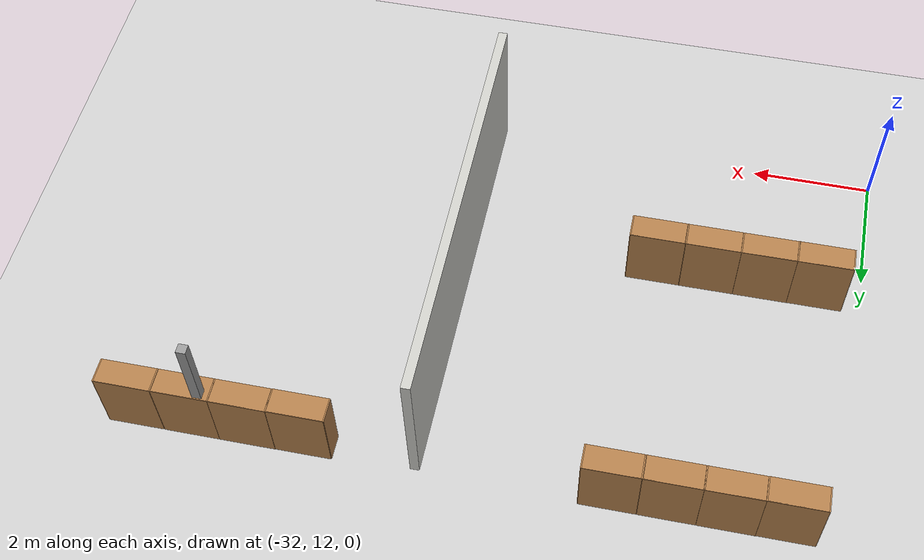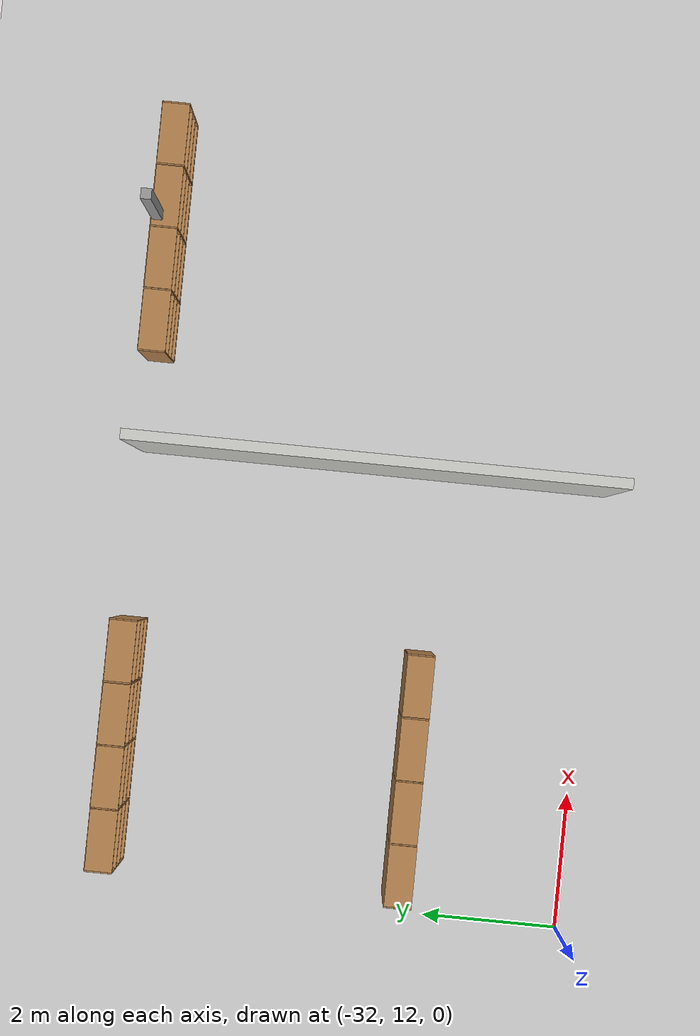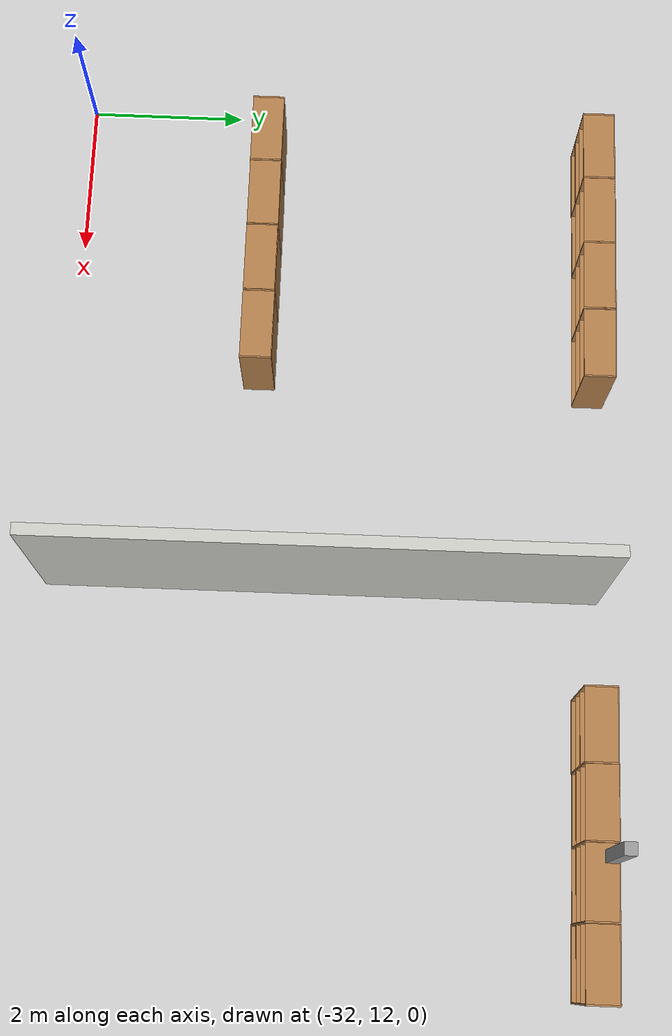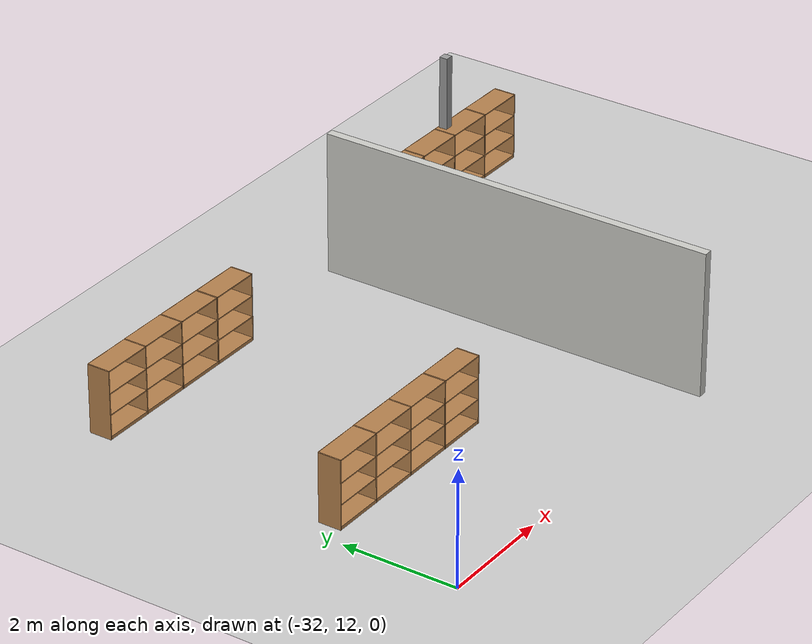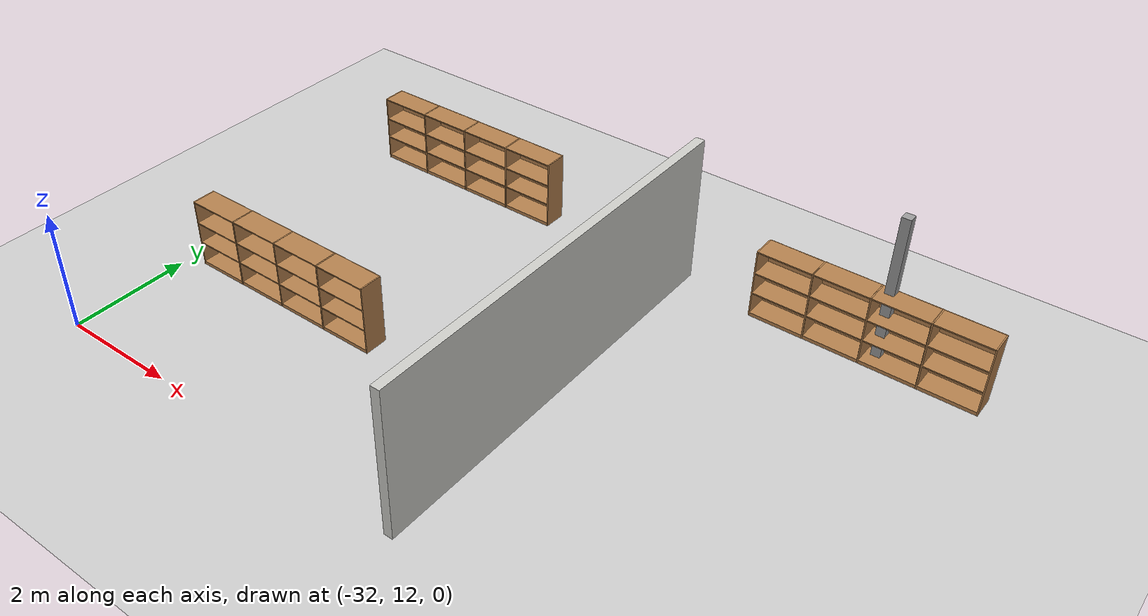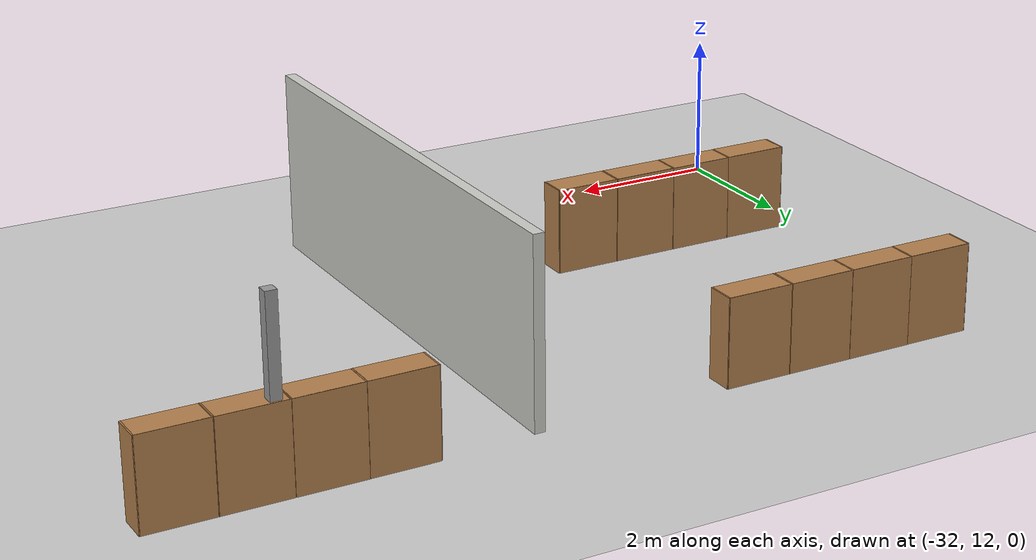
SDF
<sdf version="1.6">
 <world name="default">
  <model name="ground_plane">
   <static>1</static>
   <link name="link">
    <collision name="collision">
     <geometry><plane><normal>0 0 1</normal><size>100 100</size></plane></geometry>
     <surface><friction><ode><mu>100</mu><mu2>50</mu2></ode></friction></surface>
    </collision>
    <visual name="visual">
     <cast_shadows>0</cast_shadows>
     <geometry><plane><normal>0 0 1</normal><size>100 100</size></plane></geometry>
     <material>
      <script><uri>file://media/materials/scripts/gazebo.material</uri><name>Gazebo/Grey</name></script>
     </material>
    </visual>
   </link>
  </model>
  <model name="floor">
   <link name="Wall_33">
    <pose>-26.6849 16.6365 0 0 -0 1.5708</pose>
    <visual name="Wall_33_Visual">
     <pose>0 0 1.25 0 -0 0</pose>
     <geometry><box><size>7 0.15 2.5</size></box></geometry>
     <material>
      <script><uri>file://media/materials/scripts/gazebo.material</uri><name>Gazebo/CeilingTiled</name></script>
      <ambient>0.760784 0.662745 0.627451 1</ambient>
     </material>
     <meta><layer>0</layer></meta>
    </visual>
    <collision name="Wall_33_Collision">
     <pose>0 0 1.25 0 -0 0</pose>
     <geometry><box><size>7 0.15 2.5</size></box></geometry>
     <surface>
      <friction>
       <ode><mu>1</mu><mu2>1</mu2><fdir1>0 0 0</fdir1><slip1>0</slip1><slip2>0</slip2></ode>
       <torsional>
        <coefficient>1</coefficient>
        <patch_radius>0</patch_radius>
        <surface_radius>0</surface_radius>
        <use_patch_radius>1</use_patch_radius>
        <ode><slip>0</slip></ode>
       </torsional>
      </friction>
      <bounce><restitution_coefficient>0</restitution_coefficient><threshold>1e+06</threshold></bounce>
      <contact>
       <collide_without_contact>0</collide_without_contact>
       <collide_without_contact_bitmask>1</collide_without_contact_bitmask>
       <collide_bitmask>1</collide_bitmask>
       <ode>
        <soft_cfm>0</soft_cfm>
        <soft_erp>0.2</soft_erp>
        <kp>1e+13</kp>
        <kd>1</kd>
        <max_vel>0.01</max_vel>
        <min_depth>0</min_depth>
       </ode>
       <bullet>
        <split_impulse>1</split_impulse>
        <split_impulse_penetration_threshold>-0.01</split_impulse_penetration_threshold>
        <soft_cfm>0</soft_cfm>
        <soft_erp>0.2</soft_erp>
        <kp>1e+13</kp>
        <kd>1</kd>
       </bullet>
      </contact>
     </surface>
    </collision>
   </link>
   <link name="Wall_8">
    <pose>-23.3952 20.1172 0 0 -0 0</pose>
    <visual name="Wall_8_Visual">
     <pose>0 0 1.25 0 -0 0</pose>
     <geometry><box><size>0.15 0.15 2.5</size></box></geometry>
     <material>
      <script><uri>file://media/materials/scripts/gazebo.material</uri><name>Gazebo/Grey</name></script>
      <ambient>1 1 1 1</ambient>
     </material>
     <meta><layer>0</layer></meta>
    </visual>
    <collision name="Wall_8_Collision">
     <pose>0 0 1.25 0 -0 0</pose>
     <geometry><box><size>0.15 0.15 2.5</size></box></geometry>
     <surface>
      <friction>
       <ode><mu>1</mu><mu2>1</mu2><fdir1>0 0 0</fdir1><slip1>0</slip1><slip2>0</slip2></ode>
       <torsional>
        <coefficient>1</coefficient>
        <patch_radius>0</patch_radius>
        <surface_radius>0</surface_radius>
        <use_patch_radius>1</use_patch_radius>
        <ode><slip>0</slip></ode>
       </torsional>
      </friction>
      <bounce><restitution_coefficient>0</restitution_coefficient><threshold>1e+06</threshold></bounce>
      <contact>
       <collide_without_contact>0</collide_without_contact>
       <collide_without_contact_bitmask>1</collide_without_contact_bitmask>
       <collide_bitmask>1</collide_bitmask>
       <ode>
        <soft_cfm>0</soft_cfm>
        <soft_erp>0.2</soft_erp>
        <kp>1e+13</kp>
        <kd>1</kd>
        <max_vel>0.01</max_vel>
        <min_depth>0</min_depth>
       </ode>
       <bullet>
        <split_impulse>1</split_impulse>
        <split_impulse_penetration_threshold>-0.01</split_impulse_penetration_threshold>
        <soft_cfm>0</soft_cfm>
        <soft_erp>0.2</soft_erp>
        <kp>1e+13</kp>
        <kd>1</kd>
       </bullet>
      </contact>
     </surface>
    </collision>
   </link>
   <static>1</static>
   <pose>1.26361 -1.27025 0 0 -0 0</pose>
  </model>
  <model name="Bookshelf-4_clone_24">
   <model name="bookshelf">
    <static>1</static>
    <link name="link">
     <inertial><mass>1</mass></inertial>
     <collision name="back">
      <pose>0 0.005 0.6 0 -0 0</pose>
      <geometry><box><size>0.9 0.01 1.2</size></box></geometry>
     </collision>
     <visual name="visual1">
      <pose>0 0.005 0.6 0 -0 0</pose>
      <geometry><box><size>0.9 0.01 1.2</size></box></geometry>
      <material>
       <script><uri>file://media/materials/scripts/gazebo.material</uri><name>Gazebo/Wood</name></script>
      </material>
     </visual>
     <collision name="left_side">
      <pose>0.45 -0.195 0.6 0 -0 0</pose>
      <geometry><box><size>0.02 0.4 1.2</size></box></geometry>
     </collision>
     <visual name="visual2">
      <pose>0.45 -0.195 0.6 0 -0 0</pose>
      <geometry><box><size>0.02 0.4 1.2</size></box></geometry>
      <material>
       <script><uri>file://media/materials/scripts/gazebo.material</uri><name>Gazebo/Wood</name></script>
      </material>
     </visual>
     <collision name="right_side">
      <pose>-0.45 -0.195 0.6 0 -0 0</pose>
      <geometry><box><size>0.02 0.4 1.2</size></box></geometry>
     </collision>
     <visual name="visual3">
      <pose>-0.45 -0.195 0.6 0 -0 0</pose>
      <geometry><box><size>0.02 0.4 1.2</size></box></geometry>
      <material>
       <script><uri>file://media/materials/scripts/gazebo.material</uri><name>Gazebo/Wood</name></script>
      </material>
     </visual>
     <collision name="bottom">
      <pose>0 -0.195 0.03 0 -0 0</pose>
      <geometry><box><size>0.88 0.4 0.06</size></box></geometry>
     </collision>
     <visual name="visual4">
      <pose>0 -0.195 0.03 0 -0 0</pose>
      <geometry><box><size>0.88 0.4 0.06</size></box></geometry>
      <material>
       <script><uri>file://media/materials/scripts/gazebo.material</uri><name>Gazebo/Wood</name></script>
      </material>
     </visual>
     <collision name="top">
      <pose>0 -0.195 1.19 0 -0 0</pose>
      <geometry><box><size>0.88 0.4 0.02</size></box></geometry>
     </collision>
     <visual name="visual5">
      <pose>0 -0.195 1.19 0 -0 0</pose>
      <geometry><box><size>0.88 0.4 0.02</size></box></geometry>
      <material>
       <script><uri>file://media/materials/scripts/gazebo.material</uri><name>Gazebo/Wood</name></script>
      </material>
     </visual>
     <collision name="low_shelf">
      <pose>0 -0.195 0.43 0 -0 0</pose>
      <geometry><box><size>0.88 0.4 0.02</size></box></geometry>
     </collision>
     <visual name="visual6">
      <pose>0 -0.195 0.43 0 -0 0</pose>
      <geometry><box><size>0.88 0.4 0.02</size></box></geometry>
      <material>
       <script><uri>file://media/materials/scripts/gazebo.material</uri><name>Gazebo/Wood</name></script>
      </material>
     </visual>
     <collision name="high_shelf">
      <pose>0 -0.195 0.8 0 -0 0</pose>
      <geometry><box><size>0.88 0.4 0.02</size></box></geometry>
     </collision>
     <visual name="visual7">
      <pose>0 -0.195 0.8 0 -0 0</pose>
      <geometry><box><size>0.88 0.4 0.02</size></box></geometry>
      <material>
       <script><uri>file://media/materials/scripts/gazebo.material</uri><name>Gazebo/Wood</name></script>
      </material>
     </visual>
    </link>
    <pose>-1.35671 -0.002097 0 0 -0 0</pose>
   </model>
   <model name="bookshelf_0">
    <static>1</static>
    <link name="link">
     <inertial><mass>1</mass></inertial>
     <collision name="back">
      <pose>0 0.005 0.6 0 -0 0</pose>
      <geometry><box><size>0.9 0.01 1.2</size></box></geometry>
     </collision>
     <visual name="visual1">
      <pose>0 0.005 0.6 0 -0 0</pose>
      <geometry><box><size>0.9 0.01 1.2</size></box></geometry>
      <material>
       <script><uri>file://media/materials/scripts/gazebo.material</uri><name>Gazebo/Wood</name></script>
      </material>
     </visual>
     <collision name="left_side">
      <pose>0.45 -0.195 0.6 0 -0 0</pose>
      <geometry><box><size>0.02 0.4 1.2</size></box></geometry>
     </collision>
     <visual name="visual2">
      <pose>0.45 -0.195 0.6 0 -0 0</pose>
      <geometry><box><size>0.02 0.4 1.2</size></box></geometry>
      <material>
       <script><uri>file://media/materials/scripts/gazebo.material</uri><name>Gazebo/Wood</name></script>
      </material>
     </visual>
     <collision name="right_side">
      <pose>-0.45 -0.195 0.6 0 -0 0</pose>
      <geometry><box><size>0.02 0.4 1.2</size></box></geometry>
     </collision>
     <visual name="visual3">
      <pose>-0.45 -0.195 0.6 0 -0 0</pose>
      <geometry><box><size>0.02 0.4 1.2</size></box></geometry>
      <material>
       <script><uri>file://media/materials/scripts/gazebo.material</uri><name>Gazebo/Wood</name></script>
      </material>
     </visual>
     <collision name="bottom">
      <pose>0 -0.195 0.03 0 -0 0</pose>
      <geometry><box><size>0.88 0.4 0.06</size></box></geometry>
     </collision>
     <visual name="visual4">
      <pose>0 -0.195 0.03 0 -0 0</pose>
      <geometry><box><size>0.88 0.4 0.06</size></box></geometry>
      <material>
       <script><uri>file://media/materials/scripts/gazebo.material</uri><name>Gazebo/Wood</name></script>
      </material>
     </visual>
     <collision name="top">
      <pose>0 -0.195 1.19 0 -0 0</pose>
      <geometry><box><size>0.88 0.4 0.02</size></box></geometry>
     </collision>
     <visual name="visual5">
      <pose>0 -0.195 1.19 0 -0 0</pose>
      <geometry><box><size>0.88 0.4 0.02</size></box></geometry>
      <material>
       <script><uri>file://media/materials/scripts/gazebo.material</uri><name>Gazebo/Wood</name></script>
      </material>
     </visual>
     <collision name="low_shelf">
      <pose>0 -0.195 0.43 0 -0 0</pose>
      <geometry><box><size>0.88 0.4 0.02</size></box></geometry>
     </collision>
     <visual name="visual6">
      <pose>0 -0.195 0.43 0 -0 0</pose>
      <geometry><box><size>0.88 0.4 0.02</size></box></geometry>
      <material>
       <script><uri>file://media/materials/scripts/gazebo.material</uri><name>Gazebo/Wood</name></script>
      </material>
     </visual>
     <collision name="high_shelf">
      <pose>0 -0.195 0.8 0 -0 0</pose>
      <geometry><box><size>0.88 0.4 0.02</size></box></geometry>
     </collision>
     <visual name="visual7">
      <pose>0 -0.195 0.8 0 -0 0</pose>
      <geometry><box><size>0.88 0.4 0.02</size></box></geometry>
      <material>
       <script><uri>file://media/materials/scripts/gazebo.material</uri><name>Gazebo/Wood</name></script>
      </material>
     </visual>
    </link>
    <pose>-0.452974 0.001386 0 0 -0 0</pose>
   </model>
   <model name="bookshelf_1">
    <static>1</static>
    <link name="link">
     <inertial><mass>1</mass></inertial>
     <collision name="back">
      <pose>0 0.005 0.6 0 -0 0</pose>
      <geometry><box><size>0.9 0.01 1.2</size></box></geometry>
     </collision>
     <visual name="visual1">
      <pose>0 0.005 0.6 0 -0 0</pose>
      <geometry><box><size>0.9 0.01 1.2</size></box></geometry>
      <material>
       <script><uri>file://media/materials/scripts/gazebo.material</uri><name>Gazebo/Wood</name></script>
      </material>
     </visual>
     <collision name="left_side">
      <pose>0.45 -0.195 0.6 0 -0 0</pose>
      <geometry><box><size>0.02 0.4 1.2</size></box></geometry>
     </collision>
     <visual name="visual2">
      <pose>0.45 -0.195 0.6 0 -0 0</pose>
      <geometry><box><size>0.02 0.4 1.2</size></box></geometry>
      <material>
       <script><uri>file://media/materials/scripts/gazebo.material</uri><name>Gazebo/Wood</name></script>
      </material>
     </visual>
     <collision name="right_side">
      <pose>-0.45 -0.195 0.6 0 -0 0</pose>
      <geometry><box><size>0.02 0.4 1.2</size></box></geometry>
     </collision>
     <visual name="visual3">
      <pose>-0.45 -0.195 0.6 0 -0 0</pose>
      <geometry><box><size>0.02 0.4 1.2</size></box></geometry>
      <material>
       <script><uri>file://media/materials/scripts/gazebo.material</uri><name>Gazebo/Wood</name></script>
      </material>
     </visual>
     <collision name="bottom">
      <pose>0 -0.195 0.03 0 -0 0</pose>
      <geometry><box><size>0.88 0.4 0.06</size></box></geometry>
     </collision>
     <visual name="visual4">
      <pose>0 -0.195 0.03 0 -0 0</pose>
      <geometry><box><size>0.88 0.4 0.06</size></box></geometry>
      <material>
       <script><uri>file://media/materials/scripts/gazebo.material</uri><name>Gazebo/Wood</name></script>
      </material>
     </visual>
     <collision name="top">
      <pose>0 -0.195 1.19 0 -0 0</pose>
      <geometry><box><size>0.88 0.4 0.02</size></box></geometry>
     </collision>
     <visual name="visual5">
      <pose>0 -0.195 1.19 0 -0 0</pose>
      <geometry><box><size>0.88 0.4 0.02</size></box></geometry>
      <material>
       <script><uri>file://media/materials/scripts/gazebo.material</uri><name>Gazebo/Wood</name></script>
      </material>
     </visual>
     <collision name="low_shelf">
      <pose>0 -0.195 0.43 0 -0 0</pose>
      <geometry><box><size>0.88 0.4 0.02</size></box></geometry>
     </collision>
     <visual name="visual6">
      <pose>0 -0.195 0.43 0 -0 0</pose>
      <geometry><box><size>0.88 0.4 0.02</size></box></geometry>
      <material>
       <script><uri>file://media/materials/scripts/gazebo.material</uri><name>Gazebo/Wood</name></script>
      </material>
     </visual>
     <collision name="high_shelf">
      <pose>0 -0.195 0.8 0 -0 0</pose>
      <geometry><box><size>0.88 0.4 0.02</size></box></geometry>
     </collision>
     <visual name="visual7">
      <pose>0 -0.195 0.8 0 -0 0</pose>
      <geometry><box><size>0.88 0.4 0.02</size></box></geometry>
      <material>
       <script><uri>file://media/materials/scripts/gazebo.material</uri><name>Gazebo/Wood</name></script>
      </material>
     </visual>
    </link>
    <pose>0.450456 0.000733 0 0 -0 0</pose>
   </model>
   <model name="bookshelf_2">
    <static>1</static>
    <link name="link">
     <inertial><mass>1</mass></inertial>
     <collision name="back">
      <pose>0 0.005 0.6 0 -0 0</pose>
      <geometry><box><size>0.9 0.01 1.2</size></box></geometry>
     </collision>
     <visual name="visual1">
      <pose>0 0.005 0.6 0 -0 0</pose>
      <geometry><box><size>0.9 0.01 1.2</size></box></geometry>
      <material>
       <script><uri>file://media/materials/scripts/gazebo.material</uri><name>Gazebo/Wood</name></script>
      </material>
     </visual>
     <collision name="left_side">
      <pose>0.45 -0.195 0.6 0 -0 0</pose>
      <geometry><box><size>0.02 0.4 1.2</size></box></geometry>
     </collision>
     <visual name="visual2">
      <pose>0.45 -0.195 0.6 0 -0 0</pose>
      <geometry><box><size>0.02 0.4 1.2</size></box></geometry>
      <material>
       <script><uri>file://media/materials/scripts/gazebo.material</uri><name>Gazebo/Wood</name></script>
      </material>
     </visual>
     <collision name="right_side">
      <pose>-0.45 -0.195 0.6 0 -0 0</pose>
      <geometry><box><size>0.02 0.4 1.2</size></box></geometry>
     </collision>
     <visual name="visual3">
      <pose>-0.45 -0.195 0.6 0 -0 0</pose>
      <geometry><box><size>0.02 0.4 1.2</size></box></geometry>
      <material>
       <script><uri>file://media/materials/scripts/gazebo.material</uri><name>Gazebo/Wood</name></script>
      </material>
     </visual>
     <collision name="bottom">
      <pose>0 -0.195 0.03 0 -0 0</pose>
      <geometry><box><size>0.88 0.4 0.06</size></box></geometry>
     </collision>
     <visual name="visual4">
      <pose>0 -0.195 0.03 0 -0 0</pose>
      <geometry><box><size>0.88 0.4 0.06</size></box></geometry>
      <material>
       <script><uri>file://media/materials/scripts/gazebo.material</uri><name>Gazebo/Wood</name></script>
      </material>
     </visual>
     <collision name="top">
      <pose>0 -0.195 1.19 0 -0 0</pose>
      <geometry><box><size>0.88 0.4 0.02</size></box></geometry>
     </collision>
     <visual name="visual5">
      <pose>0 -0.195 1.19 0 -0 0</pose>
      <geometry><box><size>0.88 0.4 0.02</size></box></geometry>
      <material>
       <script><uri>file://media/materials/scripts/gazebo.material</uri><name>Gazebo/Wood</name></script>
      </material>
     </visual>
     <collision name="low_shelf">
      <pose>0 -0.195 0.43 0 -0 0</pose>
      <geometry><box><size>0.88 0.4 0.02</size></box></geometry>
     </collision>
     <visual name="visual6">
      <pose>0 -0.195 0.43 0 -0 0</pose>
      <geometry><box><size>0.88 0.4 0.02</size></box></geometry>
      <material>
       <script><uri>file://media/materials/scripts/gazebo.material</uri><name>Gazebo/Wood</name></script>
      </material>
     </visual>
     <collision name="high_shelf">
      <pose>0 -0.195 0.8 0 -0 0</pose>
      <geometry><box><size>0.88 0.4 0.02</size></box></geometry>
     </collision>
     <visual name="visual7">
      <pose>0 -0.195 0.8 0 -0 0</pose>
      <geometry><box><size>0.88 0.4 0.02</size></box></geometry>
      <material>
       <script><uri>file://media/materials/scripts/gazebo.material</uri><name>Gazebo/Wood</name></script>
      </material>
     </visual>
    </link>
    <pose>1.35922 -1.7e-05 0 0 -0 0</pose>
   </model>
   <static>0</static>
   <pose>-22.2964 18.9368 0 0 -0 0</pose>
  </model>
  <model name="Bookshelf-4_clone_26">
   <model name="bookshelf">
    <static>1</static>
    <link name="link">
     <inertial><mass>1</mass></inertial>
     <collision name="back">
      <pose>0 0.005 0.6 0 -0 0</pose>
      <geometry><box><size>0.9 0.01 1.2</size></box></geometry>
     </collision>
     <visual name="visual1">
      <pose>0 0.005 0.6 0 -0 0</pose>
      <geometry><box><size>0.9 0.01 1.2</size></box></geometry>
      <material>
       <script><uri>file://media/materials/scripts/gazebo.material</uri><name>Gazebo/Wood</name></script>
      </material>
     </visual>
     <collision name="left_side">
      <pose>0.45 -0.195 0.6 0 -0 0</pose>
      <geometry><box><size>0.02 0.4 1.2</size></box></geometry>
     </collision>
     <visual name="visual2">
      <pose>0.45 -0.195 0.6 0 -0 0</pose>
      <geometry><box><size>0.02 0.4 1.2</size></box></geometry>
      <material>
       <script><uri>file://media/materials/scripts/gazebo.material</uri><name>Gazebo/Wood</name></script>
      </material>
     </visual>
     <collision name="right_side">
      <pose>-0.45 -0.195 0.6 0 -0 0</pose>
      <geometry><box><size>0.02 0.4 1.2</size></box></geometry>
     </collision>
     <visual name="visual3">
      <pose>-0.45 -0.195 0.6 0 -0 0</pose>
      <geometry><box><size>0.02 0.4 1.2</size></box></geometry>
      <material>
       <script><uri>file://media/materials/scripts/gazebo.material</uri><name>Gazebo/Wood</name></script>
      </material>
     </visual>
     <collision name="bottom">
      <pose>0 -0.195 0.03 0 -0 0</pose>
      <geometry><box><size>0.88 0.4 0.06</size></box></geometry>
     </collision>
     <visual name="visual4">
      <pose>0 -0.195 0.03 0 -0 0</pose>
      <geometry><box><size>0.88 0.4 0.06</size></box></geometry>
      <material>
       <script><uri>file://media/materials/scripts/gazebo.material</uri><name>Gazebo/Wood</name></script>
      </material>
     </visual>
     <collision name="top">
      <pose>0 -0.195 1.19 0 -0 0</pose>
      <geometry><box><size>0.88 0.4 0.02</size></box></geometry>
     </collision>
     <visual name="visual5">
      <pose>0 -0.195 1.19 0 -0 0</pose>
      <geometry><box><size>0.88 0.4 0.02</size></box></geometry>
      <material>
       <script><uri>file://media/materials/scripts/gazebo.material</uri><name>Gazebo/Wood</name></script>
      </material>
     </visual>
     <collision name="low_shelf">
      <pose>0 -0.195 0.43 0 -0 0</pose>
      <geometry><box><size>0.88 0.4 0.02</size></box></geometry>
     </collision>
     <visual name="visual6">
      <pose>0 -0.195 0.43 0 -0 0</pose>
      <geometry><box><size>0.88 0.4 0.02</size></box></geometry>
      <material>
       <script><uri>file://media/materials/scripts/gazebo.material</uri><name>Gazebo/Wood</name></script>
      </material>
     </visual>
     <collision name="high_shelf">
      <pose>0 -0.195 0.8 0 -0 0</pose>
      <geometry><box><size>0.88 0.4 0.02</size></box></geometry>
     </collision>
     <visual name="visual7">
      <pose>0 -0.195 0.8 0 -0 0</pose>
      <geometry><box><size>0.88 0.4 0.02</size></box></geometry>
      <material>
       <script><uri>file://media/materials/scripts/gazebo.material</uri><name>Gazebo/Wood</name></script>
      </material>
     </visual>
    </link>
    <pose>-1.35671 -0.002097 0 0 -0 0</pose>
   </model>
   <model name="bookshelf_0">
    <static>1</static>
    <link name="link">
     <inertial><mass>1</mass></inertial>
     <collision name="back">
      <pose>0 0.005 0.6 0 -0 0</pose>
      <geometry><box><size>0.9 0.01 1.2</size></box></geometry>
     </collision>
     <visual name="visual1">
      <pose>0 0.005 0.6 0 -0 0</pose>
      <geometry><box><size>0.9 0.01 1.2</size></box></geometry>
      <material>
       <script><uri>file://media/materials/scripts/gazebo.material</uri><name>Gazebo/Wood</name></script>
      </material>
     </visual>
     <collision name="left_side">
      <pose>0.45 -0.195 0.6 0 -0 0</pose>
      <geometry><box><size>0.02 0.4 1.2</size></box></geometry>
     </collision>
     <visual name="visual2">
      <pose>0.45 -0.195 0.6 0 -0 0</pose>
      <geometry><box><size>0.02 0.4 1.2</size></box></geometry>
      <material>
       <script><uri>file://media/materials/scripts/gazebo.material</uri><name>Gazebo/Wood</name></script>
      </material>
     </visual>
     <collision name="right_side">
      <pose>-0.45 -0.195 0.6 0 -0 0</pose>
      <geometry><box><size>0.02 0.4 1.2</size></box></geometry>
     </collision>
     <visual name="visual3">
      <pose>-0.45 -0.195 0.6 0 -0 0</pose>
      <geometry><box><size>0.02 0.4 1.2</size></box></geometry>
      <material>
       <script><uri>file://media/materials/scripts/gazebo.material</uri><name>Gazebo/Wood</name></script>
      </material>
     </visual>
     <collision name="bottom">
      <pose>0 -0.195 0.03 0 -0 0</pose>
      <geometry><box><size>0.88 0.4 0.06</size></box></geometry>
     </collision>
     <visual name="visual4">
      <pose>0 -0.195 0.03 0 -0 0</pose>
      <geometry><box><size>0.88 0.4 0.06</size></box></geometry>
      <material>
       <script><uri>file://media/materials/scripts/gazebo.material</uri><name>Gazebo/Wood</name></script>
      </material>
     </visual>
     <collision name="top">
      <pose>0 -0.195 1.19 0 -0 0</pose>
      <geometry><box><size>0.88 0.4 0.02</size></box></geometry>
     </collision>
     <visual name="visual5">
      <pose>0 -0.195 1.19 0 -0 0</pose>
      <geometry><box><size>0.88 0.4 0.02</size></box></geometry>
      <material>
       <script><uri>file://media/materials/scripts/gazebo.material</uri><name>Gazebo/Wood</name></script>
      </material>
     </visual>
     <collision name="low_shelf">
      <pose>0 -0.195 0.43 0 -0 0</pose>
      <geometry><box><size>0.88 0.4 0.02</size></box></geometry>
     </collision>
     <visual name="visual6">
      <pose>0 -0.195 0.43 0 -0 0</pose>
      <geometry><box><size>0.88 0.4 0.02</size></box></geometry>
      <material>
       <script><uri>file://media/materials/scripts/gazebo.material</uri><name>Gazebo/Wood</name></script>
      </material>
     </visual>
     <collision name="high_shelf">
      <pose>0 -0.195 0.8 0 -0 0</pose>
      <geometry><box><size>0.88 0.4 0.02</size></box></geometry>
     </collision>
     <visual name="visual7">
      <pose>0 -0.195 0.8 0 -0 0</pose>
      <geometry><box><size>0.88 0.4 0.02</size></box></geometry>
      <material>
       <script><uri>file://media/materials/scripts/gazebo.material</uri><name>Gazebo/Wood</name></script>
      </material>
     </visual>
    </link>
    <pose>-0.452974 0.001386 0 0 -0 0</pose>
   </model>
   <model name="bookshelf_1">
    <static>1</static>
    <link name="link">
     <inertial><mass>1</mass></inertial>
     <collision name="back">
      <pose>0 0.005 0.6 0 -0 0</pose>
      <geometry><box><size>0.9 0.01 1.2</size></box></geometry>
     </collision>
     <visual name="visual1">
      <pose>0 0.005 0.6 0 -0 0</pose>
      <geometry><box><size>0.9 0.01 1.2</size></box></geometry>
      <material>
       <script><uri>file://media/materials/scripts/gazebo.material</uri><name>Gazebo/Wood</name></script>
      </material>
     </visual>
     <collision name="left_side">
      <pose>0.45 -0.195 0.6 0 -0 0</pose>
      <geometry><box><size>0.02 0.4 1.2</size></box></geometry>
     </collision>
     <visual name="visual2">
      <pose>0.45 -0.195 0.6 0 -0 0</pose>
      <geometry><box><size>0.02 0.4 1.2</size></box></geometry>
      <material>
       <script><uri>file://media/materials/scripts/gazebo.material</uri><name>Gazebo/Wood</name></script>
      </material>
     </visual>
     <collision name="right_side">
      <pose>-0.45 -0.195 0.6 0 -0 0</pose>
      <geometry><box><size>0.02 0.4 1.2</size></box></geometry>
     </collision>
     <visual name="visual3">
      <pose>-0.45 -0.195 0.6 0 -0 0</pose>
      <geometry><box><size>0.02 0.4 1.2</size></box></geometry>
      <material>
       <script><uri>file://media/materials/scripts/gazebo.material</uri><name>Gazebo/Wood</name></script>
      </material>
     </visual>
     <collision name="bottom">
      <pose>0 -0.195 0.03 0 -0 0</pose>
      <geometry><box><size>0.88 0.4 0.06</size></box></geometry>
     </collision>
     <visual name="visual4">
      <pose>0 -0.195 0.03 0 -0 0</pose>
      <geometry><box><size>0.88 0.4 0.06</size></box></geometry>
      <material>
       <script><uri>file://media/materials/scripts/gazebo.material</uri><name>Gazebo/Wood</name></script>
      </material>
     </visual>
     <collision name="top">
      <pose>0 -0.195 1.19 0 -0 0</pose>
      <geometry><box><size>0.88 0.4 0.02</size></box></geometry>
     </collision>
     <visual name="visual5">
      <pose>0 -0.195 1.19 0 -0 0</pose>
      <geometry><box><size>0.88 0.4 0.02</size></box></geometry>
      <material>
       <script><uri>file://media/materials/scripts/gazebo.material</uri><name>Gazebo/Wood</name></script>
      </material>
     </visual>
     <collision name="low_shelf">
      <pose>0 -0.195 0.43 0 -0 0</pose>
      <geometry><box><size>0.88 0.4 0.02</size></box></geometry>
     </collision>
     <visual name="visual6">
      <pose>0 -0.195 0.43 0 -0 0</pose>
      <geometry><box><size>0.88 0.4 0.02</size></box></geometry>
      <material>
       <script><uri>file://media/materials/scripts/gazebo.material</uri><name>Gazebo/Wood</name></script>
      </material>
     </visual>
     <collision name="high_shelf">
      <pose>0 -0.195 0.8 0 -0 0</pose>
      <geometry><box><size>0.88 0.4 0.02</size></box></geometry>
     </collision>
     <visual name="visual7">
      <pose>0 -0.195 0.8 0 -0 0</pose>
      <geometry><box><size>0.88 0.4 0.02</size></box></geometry>
      <material>
       <script><uri>file://media/materials/scripts/gazebo.material</uri><name>Gazebo/Wood</name></script>
      </material>
     </visual>
    </link>
    <pose>0.450456 0.000733 0 0 -0 0</pose>
   </model>
   <model name="bookshelf_2">
    <static>1</static>
    <link name="link">
     <inertial><mass>1</mass></inertial>
     <collision name="back">
      <pose>0 0.005 0.6 0 -0 0</pose>
      <geometry><box><size>0.9 0.01 1.2</size></box></geometry>
     </collision>
     <visual name="visual1">
      <pose>0 0.005 0.6 0 -0 0</pose>
      <geometry><box><size>0.9 0.01 1.2</size></box></geometry>
      <material>
       <script><uri>file://media/materials/scripts/gazebo.material</uri><name>Gazebo/Wood</name></script>
      </material>
     </visual>
     <collision name="left_side">
      <pose>0.45 -0.195 0.6 0 -0 0</pose>
      <geometry><box><size>0.02 0.4 1.2</size></box></geometry>
     </collision>
     <visual name="visual2">
      <pose>0.45 -0.195 0.6 0 -0 0</pose>
      <geometry><box><size>0.02 0.4 1.2</size></box></geometry>
      <material>
       <script><uri>file://media/materials/scripts/gazebo.material</uri><name>Gazebo/Wood</name></script>
      </material>
     </visual>
     <collision name="right_side">
      <pose>-0.45 -0.195 0.6 0 -0 0</pose>
      <geometry><box><size>0.02 0.4 1.2</size></box></geometry>
     </collision>
     <visual name="visual3">
      <pose>-0.45 -0.195 0.6 0 -0 0</pose>
      <geometry><box><size>0.02 0.4 1.2</size></box></geometry>
      <material>
       <script><uri>file://media/materials/scripts/gazebo.material</uri><name>Gazebo/Wood</name></script>
      </material>
     </visual>
     <collision name="bottom">
      <pose>0 -0.195 0.03 0 -0 0</pose>
      <geometry><box><size>0.88 0.4 0.06</size></box></geometry>
     </collision>
     <visual name="visual4">
      <pose>0 -0.195 0.03 0 -0 0</pose>
      <geometry><box><size>0.88 0.4 0.06</size></box></geometry>
      <material>
       <script><uri>file://media/materials/scripts/gazebo.material</uri><name>Gazebo/Wood</name></script>
      </material>
     </visual>
     <collision name="top">
      <pose>0 -0.195 1.19 0 -0 0</pose>
      <geometry><box><size>0.88 0.4 0.02</size></box></geometry>
     </collision>
     <visual name="visual5">
      <pose>0 -0.195 1.19 0 -0 0</pose>
      <geometry><box><size>0.88 0.4 0.02</size></box></geometry>
      <material>
       <script><uri>file://media/materials/scripts/gazebo.material</uri><name>Gazebo/Wood</name></script>
      </material>
     </visual>
     <collision name="low_shelf">
      <pose>0 -0.195 0.43 0 -0 0</pose>
      <geometry><box><size>0.88 0.4 0.02</size></box></geometry>
     </collision>
     <visual name="visual6">
      <pose>0 -0.195 0.43 0 -0 0</pose>
      <geometry><box><size>0.88 0.4 0.02</size></box></geometry>
      <material>
       <script><uri>file://media/materials/scripts/gazebo.material</uri><name>Gazebo/Wood</name></script>
      </material>
     </visual>
     <collision name="high_shelf">
      <pose>0 -0.195 0.8 0 -0 0</pose>
      <geometry><box><size>0.88 0.4 0.02</size></box></geometry>
     </collision>
     <visual name="visual7">
      <pose>0 -0.195 0.8 0 -0 0</pose>
      <geometry><box><size>0.88 0.4 0.02</size></box></geometry>
      <material>
       <script><uri>file://media/materials/scripts/gazebo.material</uri><name>Gazebo/Wood</name></script>
      </material>
     </visual>
    </link>
    <pose>1.35922 -1.7e-05 0 0 -0 0</pose>
   </model>
   <static>0</static>
   <pose>-29.7989 18.9392 0 0 -0 0</pose>
  </model>
  <model name="Bookshelf-4_clone_27">
   <model name="bookshelf">
    <static>1</static>
    <link name="link">
     <inertial><mass>1</mass></inertial>
     <collision name="back">
      <pose>0 0.005 0.6 0 -0 0</pose>
      <geometry><box><size>0.9 0.01 1.2</size></box></geometry>
     </collision>
     <visual name="visual1">
      <pose>0 0.005 0.6 0 -0 0</pose>
      <geometry><box><size>0.9 0.01 1.2</size></box></geometry>
      <material>
       <script><uri>file://media/materials/scripts/gazebo.material</uri><name>Gazebo/Wood</name></script>
      </material>
     </visual>
     <collision name="left_side">
      <pose>0.45 -0.195 0.6 0 -0 0</pose>
      <geometry><box><size>0.02 0.4 1.2</size></box></geometry>
     </collision>
     <visual name="visual2">
      <pose>0.45 -0.195 0.6 0 -0 0</pose>
      <geometry><box><size>0.02 0.4 1.2</size></box></geometry>
      <material>
       <script><uri>file://media/materials/scripts/gazebo.material</uri><name>Gazebo/Wood</name></script>
      </material>
     </visual>
     <collision name="right_side">
      <pose>-0.45 -0.195 0.6 0 -0 0</pose>
      <geometry><box><size>0.02 0.4 1.2</size></box></geometry>
     </collision>
     <visual name="visual3">
      <pose>-0.45 -0.195 0.6 0 -0 0</pose>
      <geometry><box><size>0.02 0.4 1.2</size></box></geometry>
      <material>
       <script><uri>file://media/materials/scripts/gazebo.material</uri><name>Gazebo/Wood</name></script>
      </material>
     </visual>
     <collision name="bottom">
      <pose>0 -0.195 0.03 0 -0 0</pose>
      <geometry><box><size>0.88 0.4 0.06</size></box></geometry>
     </collision>
     <visual name="visual4">
      <pose>0 -0.195 0.03 0 -0 0</pose>
      <geometry><box><size>0.88 0.4 0.06</size></box></geometry>
      <material>
       <script><uri>file://media/materials/scripts/gazebo.material</uri><name>Gazebo/Wood</name></script>
      </material>
     </visual>
     <collision name="top">
      <pose>0 -0.195 1.19 0 -0 0</pose>
      <geometry><box><size>0.88 0.4 0.02</size></box></geometry>
     </collision>
     <visual name="visual5">
      <pose>0 -0.195 1.19 0 -0 0</pose>
      <geometry><box><size>0.88 0.4 0.02</size></box></geometry>
      <material>
       <script><uri>file://media/materials/scripts/gazebo.material</uri><name>Gazebo/Wood</name></script>
      </material>
     </visual>
     <collision name="low_shelf">
      <pose>0 -0.195 0.43 0 -0 0</pose>
      <geometry><box><size>0.88 0.4 0.02</size></box></geometry>
     </collision>
     <visual name="visual6">
      <pose>0 -0.195 0.43 0 -0 0</pose>
      <geometry><box><size>0.88 0.4 0.02</size></box></geometry>
      <material>
       <script><uri>file://media/materials/scripts/gazebo.material</uri><name>Gazebo/Wood</name></script>
      </material>
     </visual>
     <collision name="high_shelf">
      <pose>0 -0.195 0.8 0 -0 0</pose>
      <geometry><box><size>0.88 0.4 0.02</size></box></geometry>
     </collision>
     <visual name="visual7">
      <pose>0 -0.195 0.8 0 -0 0</pose>
      <geometry><box><size>0.88 0.4 0.02</size></box></geometry>
      <material>
       <script><uri>file://media/materials/scripts/gazebo.material</uri><name>Gazebo/Wood</name></script>
      </material>
     </visual>
    </link>
    <pose>-1.35671 -0.002097 0 0 -0 0</pose>
   </model>
   <model name="bookshelf_0">
    <static>1</static>
    <link name="link">
     <inertial><mass>1</mass></inertial>
     <collision name="back">
      <pose>0 0.005 0.6 0 -0 0</pose>
      <geometry><box><size>0.9 0.01 1.2</size></box></geometry>
     </collision>
     <visual name="visual1">
      <pose>0 0.005 0.6 0 -0 0</pose>
      <geometry><box><size>0.9 0.01 1.2</size></box></geometry>
      <material>
       <script><uri>file://media/materials/scripts/gazebo.material</uri><name>Gazebo/Wood</name></script>
      </material>
     </visual>
     <collision name="left_side">
      <pose>0.45 -0.195 0.6 0 -0 0</pose>
      <geometry><box><size>0.02 0.4 1.2</size></box></geometry>
     </collision>
     <visual name="visual2">
      <pose>0.45 -0.195 0.6 0 -0 0</pose>
      <geometry><box><size>0.02 0.4 1.2</size></box></geometry>
      <material>
       <script><uri>file://media/materials/scripts/gazebo.material</uri><name>Gazebo/Wood</name></script>
      </material>
     </visual>
     <collision name="right_side">
      <pose>-0.45 -0.195 0.6 0 -0 0</pose>
      <geometry><box><size>0.02 0.4 1.2</size></box></geometry>
     </collision>
     <visual name="visual3">
      <pose>-0.45 -0.195 0.6 0 -0 0</pose>
      <geometry><box><size>0.02 0.4 1.2</size></box></geometry>
      <material>
       <script><uri>file://media/materials/scripts/gazebo.material</uri><name>Gazebo/Wood</name></script>
      </material>
     </visual>
     <collision name="bottom">
      <pose>0 -0.195 0.03 0 -0 0</pose>
      <geometry><box><size>0.88 0.4 0.06</size></box></geometry>
     </collision>
     <visual name="visual4">
      <pose>0 -0.195 0.03 0 -0 0</pose>
      <geometry><box><size>0.88 0.4 0.06</size></box></geometry>
      <material>
       <script><uri>file://media/materials/scripts/gazebo.material</uri><name>Gazebo/Wood</name></script>
      </material>
     </visual>
     <collision name="top">
      <pose>0 -0.195 1.19 0 -0 0</pose>
      <geometry><box><size>0.88 0.4 0.02</size></box></geometry>
     </collision>
     <visual name="visual5">
      <pose>0 -0.195 1.19 0 -0 0</pose>
      <geometry><box><size>0.88 0.4 0.02</size></box></geometry>
      <material>
       <script><uri>file://media/materials/scripts/gazebo.material</uri><name>Gazebo/Wood</name></script>
      </material>
     </visual>
     <collision name="low_shelf">
      <pose>0 -0.195 0.43 0 -0 0</pose>
      <geometry><box><size>0.88 0.4 0.02</size></box></geometry>
     </collision>
     <visual name="visual6">
      <pose>0 -0.195 0.43 0 -0 0</pose>
      <geometry><box><size>0.88 0.4 0.02</size></box></geometry>
      <material>
       <script><uri>file://media/materials/scripts/gazebo.material</uri><name>Gazebo/Wood</name></script>
      </material>
     </visual>
     <collision name="high_shelf">
      <pose>0 -0.195 0.8 0 -0 0</pose>
      <geometry><box><size>0.88 0.4 0.02</size></box></geometry>
     </collision>
     <visual name="visual7">
      <pose>0 -0.195 0.8 0 -0 0</pose>
      <geometry><box><size>0.88 0.4 0.02</size></box></geometry>
      <material>
       <script><uri>file://media/materials/scripts/gazebo.material</uri><name>Gazebo/Wood</name></script>
      </material>
     </visual>
    </link>
    <pose>-0.452974 0.001386 0 0 -0 0</pose>
   </model>
   <model name="bookshelf_1">
    <static>1</static>
    <link name="link">
     <inertial><mass>1</mass></inertial>
     <collision name="back">
      <pose>0 0.005 0.6 0 -0 0</pose>
      <geometry><box><size>0.9 0.01 1.2</size></box></geometry>
     </collision>
     <visual name="visual1">
      <pose>0 0.005 0.6 0 -0 0</pose>
      <geometry><box><size>0.9 0.01 1.2</size></box></geometry>
      <material>
       <script><uri>file://media/materials/scripts/gazebo.material</uri><name>Gazebo/Wood</name></script>
      </material>
     </visual>
     <collision name="left_side">
      <pose>0.45 -0.195 0.6 0 -0 0</pose>
      <geometry><box><size>0.02 0.4 1.2</size></box></geometry>
     </collision>
     <visual name="visual2">
      <pose>0.45 -0.195 0.6 0 -0 0</pose>
      <geometry><box><size>0.02 0.4 1.2</size></box></geometry>
      <material>
       <script><uri>file://media/materials/scripts/gazebo.material</uri><name>Gazebo/Wood</name></script>
      </material>
     </visual>
     <collision name="right_side">
      <pose>-0.45 -0.195 0.6 0 -0 0</pose>
      <geometry><box><size>0.02 0.4 1.2</size></box></geometry>
     </collision>
     <visual name="visual3">
      <pose>-0.45 -0.195 0.6 0 -0 0</pose>
      <geometry><box><size>0.02 0.4 1.2</size></box></geometry>
      <material>
       <script><uri>file://media/materials/scripts/gazebo.material</uri><name>Gazebo/Wood</name></script>
      </material>
     </visual>
     <collision name="bottom">
      <pose>0 -0.195 0.03 0 -0 0</pose>
      <geometry><box><size>0.88 0.4 0.06</size></box></geometry>
     </collision>
     <visual name="visual4">
      <pose>0 -0.195 0.03 0 -0 0</pose>
      <geometry><box><size>0.88 0.4 0.06</size></box></geometry>
      <material>
       <script><uri>file://media/materials/scripts/gazebo.material</uri><name>Gazebo/Wood</name></script>
      </material>
     </visual>
     <collision name="top">
      <pose>0 -0.195 1.19 0 -0 0</pose>
      <geometry><box><size>0.88 0.4 0.02</size></box></geometry>
     </collision>
     <visual name="visual5">
      <pose>0 -0.195 1.19 0 -0 0</pose>
      <geometry><box><size>0.88 0.4 0.02</size></box></geometry>
      <material>
       <script><uri>file://media/materials/scripts/gazebo.material</uri><name>Gazebo/Wood</name></script>
      </material>
     </visual>
     <collision name="low_shelf">
      <pose>0 -0.195 0.43 0 -0 0</pose>
      <geometry><box><size>0.88 0.4 0.02</size></box></geometry>
     </collision>
     <visual name="visual6">
      <pose>0 -0.195 0.43 0 -0 0</pose>
      <geometry><box><size>0.88 0.4 0.02</size></box></geometry>
      <material>
       <script><uri>file://media/materials/scripts/gazebo.material</uri><name>Gazebo/Wood</name></script>
      </material>
     </visual>
     <collision name="high_shelf">
      <pose>0 -0.195 0.8 0 -0 0</pose>
      <geometry><box><size>0.88 0.4 0.02</size></box></geometry>
     </collision>
     <visual name="visual7">
      <pose>0 -0.195 0.8 0 -0 0</pose>
      <geometry><box><size>0.88 0.4 0.02</size></box></geometry>
      <material>
       <script><uri>file://media/materials/scripts/gazebo.material</uri><name>Gazebo/Wood</name></script>
      </material>
     </visual>
    </link>
    <pose>0.450456 0.000733 0 0 -0 0</pose>
   </model>
   <model name="bookshelf_2">
    <static>1</static>
    <link name="link">
     <inertial><mass>1</mass></inertial>
     <collision name="back">
      <pose>0 0.005 0.6 0 -0 0</pose>
      <geometry><box><size>0.9 0.01 1.2</size></box></geometry>
     </collision>
     <visual name="visual1">
      <pose>0 0.005 0.6 0 -0 0</pose>
      <geometry><box><size>0.9 0.01 1.2</size></box></geometry>
      <material>
       <script><uri>file://media/materials/scripts/gazebo.material</uri><name>Gazebo/Wood</name></script>
      </material>
     </visual>
     <collision name="left_side">
      <pose>0.45 -0.195 0.6 0 -0 0</pose>
      <geometry><box><size>0.02 0.4 1.2</size></box></geometry>
     </collision>
     <visual name="visual2">
      <pose>0.45 -0.195 0.6 0 -0 0</pose>
      <geometry><box><size>0.02 0.4 1.2</size></box></geometry>
      <material>
       <script><uri>file://media/materials/scripts/gazebo.material</uri><name>Gazebo/Wood</name></script>
      </material>
     </visual>
     <collision name="right_side">
      <pose>-0.45 -0.195 0.6 0 -0 0</pose>
      <geometry><box><size>0.02 0.4 1.2</size></box></geometry>
     </collision>
     <visual name="visual3">
      <pose>-0.45 -0.195 0.6 0 -0 0</pose>
      <geometry><box><size>0.02 0.4 1.2</size></box></geometry>
      <material>
       <script><uri>file://media/materials/scripts/gazebo.material</uri><name>Gazebo/Wood</name></script>
      </material>
     </visual>
     <collision name="bottom">
      <pose>0 -0.195 0.03 0 -0 0</pose>
      <geometry><box><size>0.88 0.4 0.06</size></box></geometry>
     </collision>
     <visual name="visual4">
      <pose>0 -0.195 0.03 0 -0 0</pose>
      <geometry><box><size>0.88 0.4 0.06</size></box></geometry>
      <material>
       <script><uri>file://media/materials/scripts/gazebo.material</uri><name>Gazebo/Wood</name></script>
      </material>
     </visual>
     <collision name="top">
      <pose>0 -0.195 1.19 0 -0 0</pose>
      <geometry><box><size>0.88 0.4 0.02</size></box></geometry>
     </collision>
     <visual name="visual5">
      <pose>0 -0.195 1.19 0 -0 0</pose>
      <geometry><box><size>0.88 0.4 0.02</size></box></geometry>
      <material>
       <script><uri>file://media/materials/scripts/gazebo.material</uri><name>Gazebo/Wood</name></script>
      </material>
     </visual>
     <collision name="low_shelf">
      <pose>0 -0.195 0.43 0 -0 0</pose>
      <geometry><box><size>0.88 0.4 0.02</size></box></geometry>
     </collision>
     <visual name="visual6">
      <pose>0 -0.195 0.43 0 -0 0</pose>
      <geometry><box><size>0.88 0.4 0.02</size></box></geometry>
      <material>
       <script><uri>file://media/materials/scripts/gazebo.material</uri><name>Gazebo/Wood</name></script>
      </material>
     </visual>
     <collision name="high_shelf">
      <pose>0 -0.195 0.8 0 -0 0</pose>
      <geometry><box><size>0.88 0.4 0.02</size></box></geometry>
     </collision>
     <visual name="visual7">
      <pose>0 -0.195 0.8 0 -0 0</pose>
      <geometry><box><size>0.88 0.4 0.02</size></box></geometry>
      <material>
       <script><uri>file://media/materials/scripts/gazebo.material</uri><name>Gazebo/Wood</name></script>
      </material>
     </visual>
    </link>
    <pose>1.35922 -1.7e-05 0 0 -0 0</pose>
   </model>
   <static>0</static>
   <pose>-29.8888 14.6354 0 0 -0 0</pose>
  </model>
 </world>
</sdf>
